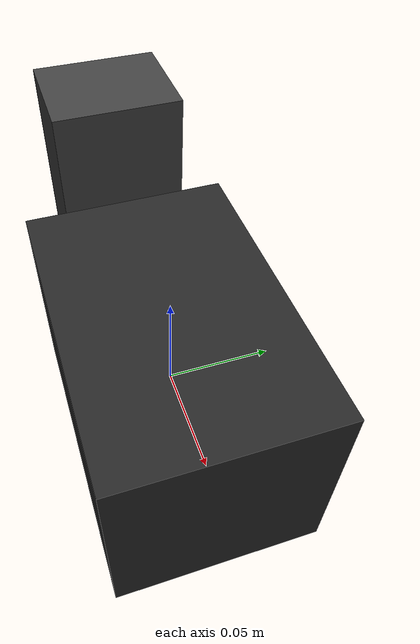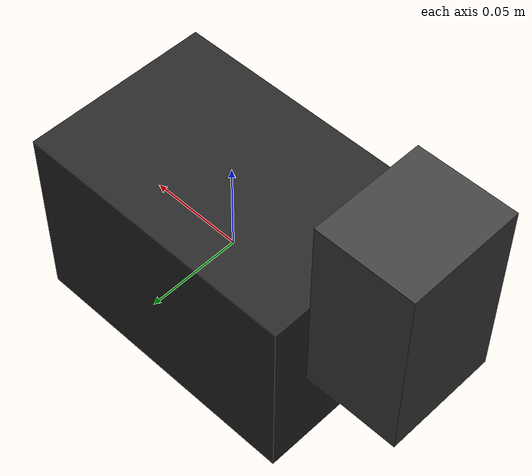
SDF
<sdf version="1.8">
  <model name="camera_01">
    <static>true</static>

    <!-- Camera body -->
    <link name="camera_body">
      <visual name="body_visual">
        <geometry>
          <box><size>0.15 0.1 0.1</size></box>
        </geometry>
        <material>
          <ambient>0.1 0.1 0.1 1</ambient>
          <diffuse>0.15 0.15 0.15 1</diffuse>
        </material>
      </visual>
      <collision name="body_collision">
        <geometry>
          <box><size>0.15 0.1 0.1</size></box>
        </geometry>
      </collision>

      <sensor name="camera_sensor" type="camera">
        <topic>/camera</topic>
        <update_rate>15</update_rate>
        <camera>
          <horizontal_fov>1.39626</horizontal_fov>
          <image>
            <width>640</width>
            <height>480</height>
            <format>R8G8B8</format>
          </image>
          <clip>
            <near>0.1</near>
            <far>50.0</far>
          </clip>
        </camera>
        <always_on>1</always_on>
        <visualize>true</visualize>
      </sensor>
    </link>

    <!-- Mounting bracket -->
    <link name="mount_bracket">
      <pose>-0.1 0 0.05 0 0 0</pose>
      <visual name="bracket_visual">
        <geometry>
          <box><size>0.05 0.06 0.1</size></box>
        </geometry>
        <material>
          <ambient>0.2 0.2 0.2 1</ambient>
          <diffuse>0.25 0.25 0.25 1</diffuse>
        </material>
      </visual>
      <collision name="bracket_collision">
        <geometry>
          <box><size>0.05 0.06 0.1</size></box>
        </geometry>
      </collision>
    </link>

    <joint name="bracket_joint" type="fixed">
      <parent>camera_body</parent>
      <child>mount_bracket</child>
    </joint>
  </model>
</sdf>
